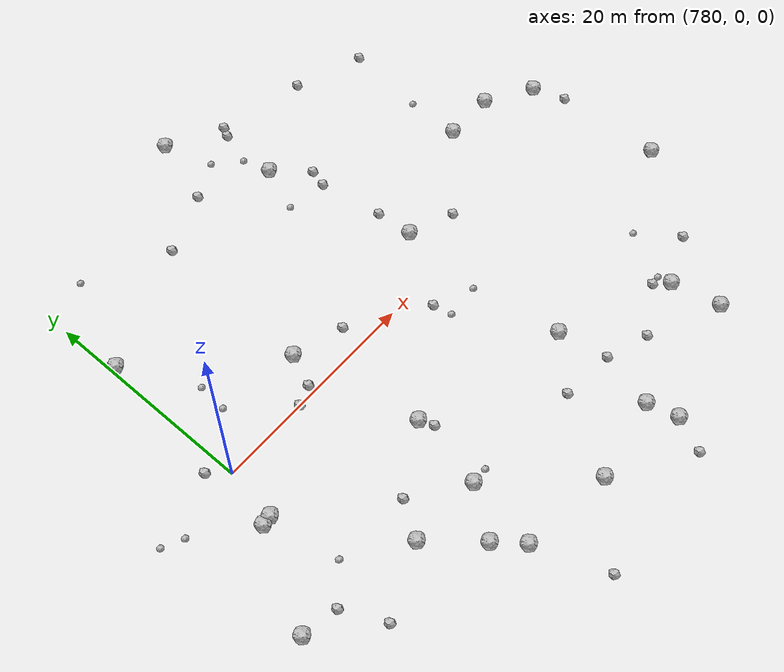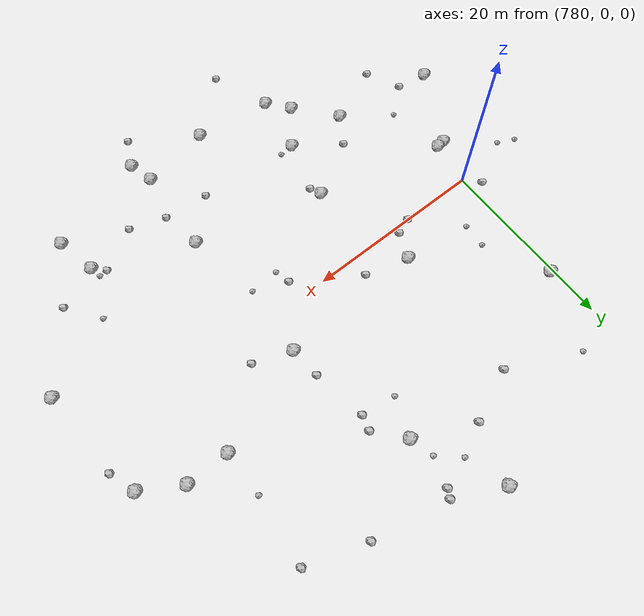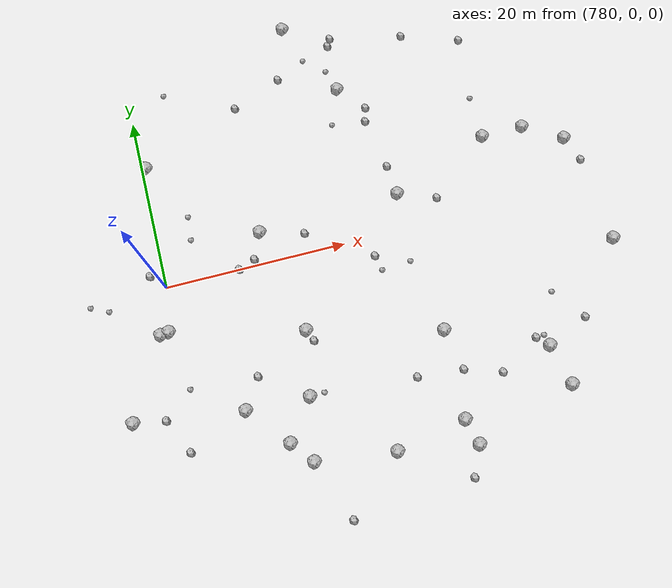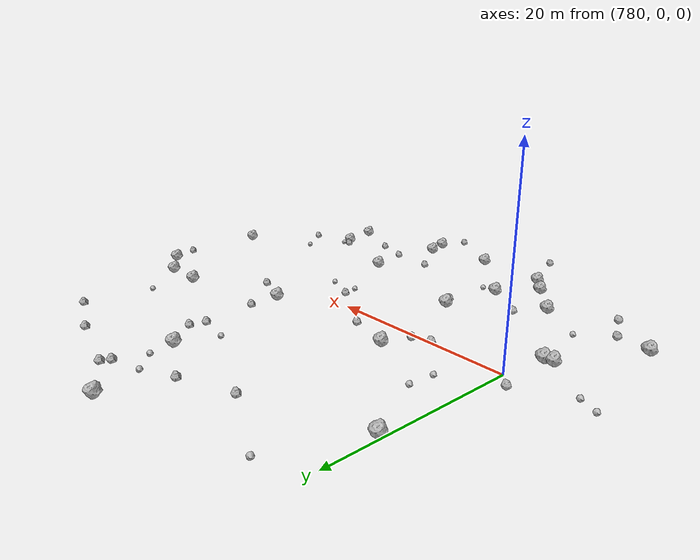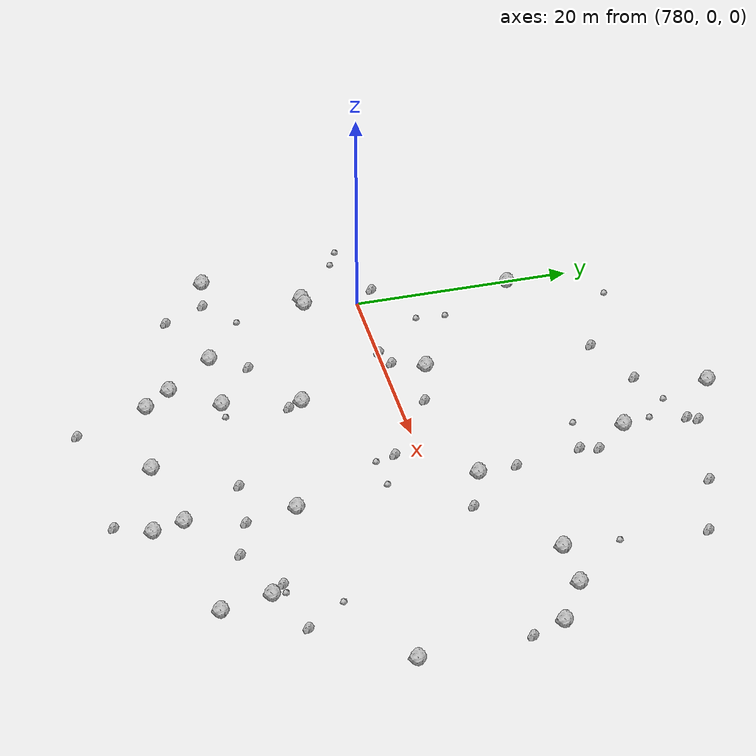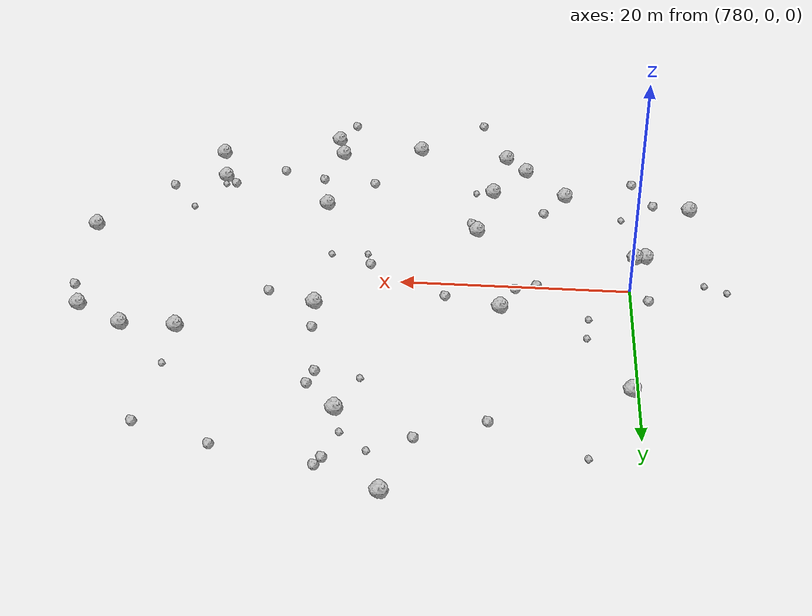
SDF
<sdf version="1.6">
 <world name="default">
  <include><uri>model://sun</uri></include>
  <model name="rock1_20_4">
   <include><uri>model://rock1</uri><pose>778.4753780196405 -5.02776273687974 0.5 0 0 0</pose></include>
  </model>
  <model name="rock1_20_5">
   <include><uri>model://rock1</uri><pose>791.1880117989283 -21.981650334903442 0.5 0 0 0</pose></include>
  </model>
  <model name="rock1_20_6">
   <include><uri>model://rock1</uri><pose>785.5257105684366 -15.118134649139492 0.5 0 0 0</pose></include>
  </model>
  <model name="rock1_20_7">
   <include><uri>model://rock1</uri><pose>793.6238957522977 -8.40751480659155 0.5 0 0 0</pose></include>
  </model>
  <model name="rock1_20_8">
   <include><uri>model://rock1</uri><pose>807.900963334611 -12.088778932790337 0.5 0 0 0</pose></include>
  </model>
  <model name="rock1_20_9">
   <include><uri>model://rock1</uri><pose>799.7306250905763 -23.109929781710797 0.5 0 0 0</pose></include>
  </model>
  <model name="rock1_20_10">
   <include><uri>model://rock1</uri><pose>823.071871862472 8.428786631577552 0.5 0 0 0</pose></include>
  </model>
  <model name="rock1_20_11">
   <include><uri>model://rock1</uri><pose>773.9163891941655 -13.476347096206396 0.5 0 0 0</pose></include>
  </model>
  <model name="rock1_20_12">
   <include><uri>model://rock1</uri><pose>780.5297196400637 14.180271473451377 0.5 0 0 0</pose></include>
  </model>
  <model name="rock1_20_13">
   <include><uri>model://rock1</uri><pose>807.1381581168959 4.15824588052007 0.5 0 0 0</pose></include>
  </model>
  <model name="rock1_20_14">
   <include><uri>model://rock1</uri><pose>827.2846607519042 5.896355351863448 0.5 0 0 0</pose></include>
  </model>
  <model name="rock1_20_15">
   <include><uri>model://rock1</uri><pose>808.1001873708793 -24.548027830983294 0.5 0 0 0</pose></include>
  </model>
  <model name="rock1_20_16">
   <include><uri>model://rock1</uri><pose>792.3429157064476 -15.385986374103467 0.5 0 0 0</pose></include>
  </model>
  <model name="rock1_20_17">
   <include><uri>model://rock1</uri><pose>803.787863644221 18.296198104467663 0.5 0 0 0</pose></include>
  </model>
  <model name="rock1_20_18">
   <include><uri>model://rock1</uri><pose>791.24762804776 3.5867807892223382 0.5 0 0 0</pose></include>
  </model>
  <model name="rock1_20_19">
   <include><uri>model://rock1</uri><pose>807.3893345659941 -21.731871555863737 0.5 0 0 0</pose></include>
  </model>
  <model name="rock1_20_20">
   <include><uri>model://rock1</uri><pose>818.3520962589962 8.416133973296624 0.5 0 0 0</pose></include>
  </model>
  <model name="rock1_20_21">
   <include><uri>model://rock1</uri><pose>799.4400065151268 27.487920000380292 0.5 0 0 0</pose></include>
  </model>
  <model name="rock1_20_22">
   <include><uri>model://rock1</uri><pose>779.3764360284924 -4.923546595937896 0.5 0 0 0</pose></include>
  </model>
  <model name="rock1_20_23">
   <include><uri>model://rock1</uri><pose>789.2512750225184 -19.551085738378333 0.5 0 0 0</pose></include>
  </model>
  <model name="rock1_20_24">
   <include><uri>model://rock1</uri><pose>819.3096120779836 -21.036387811190558 0.5 0 0 0</pose></include>
  </model>
  <model name="rock1_20_25">
   <include><uri>model://rock1</uri><pose>828.7796825471142 -6.842179280478341 0.5 0 0 0</pose></include>
  </model>
  <model name="rock1_20_26">
   <include><uri>model://rock1</uri><pose>818.3296911531804 -16.50690139951509 0.5 0 0 0</pose></include>
  </model>
  <model name="rock2_20_0">
   <include><uri>model://rock2</uri><pose>811.2771712277032 2.6100777485529036 0.3 0 0 0</pose></include>
  </model>
  <model name="rock2_20_1">
   <include><uri>model://rock2</uri><pose>791.7909291921119 18.945913954266025 0.3 0 0 0</pose></include>
  </model>
  <model name="rock2_20_2">
   <include><uri>model://rock2</uri><pose>788.1300057673142 0.028642112328611802 0.3 0 0 0</pose></include>
  </model>
  <model name="rock2_20_3">
   <include><uri>model://rock2</uri><pose>779.0744688838131 -17.880026204979593 0.3 0 0 0</pose></include>
  </model>
  <model name="rock2_20_4">
   <include><uri>model://rock2</uri><pose>804.5408237247453 24.96282569732096 0.3 0 0 0</pose></include>
  </model>
  <model name="rock2_20_5">
   <include><uri>model://rock2</uri><pose>817.1630778591003 -15.324384285387476 0.3 0 0 0</pose></include>
  </model>
  <model name="rock2_20_6">
   <include><uri>model://rock2</uri><pose>777.2498317762092 -14.067219011686289 0.3 0 0 0</pose></include>
  </model>
  <model name="rock2_20_7">
   <include><uri>model://rock2</uri><pose>795.9951041818574 2.258892867676842 0.3 0 0 0</pose></include>
  </model>
  <model name="rock2_20_8">
   <include><uri>model://rock2</uri><pose>797.3921093987044 21.288360767024287 0.3 0 0 0</pose></include>
  </model>
  <model name="rock2_20_9">
   <include><uri>model://rock2</uri><pose>808.7167834274007 -16.662893723286473 0.3 0 0 0</pose></include>
  </model>
  <model name="rock2_20_10">
   <include><uri>model://rock2</uri><pose>804.0533922999402 24.062220959174354 0.3 0 0 0</pose></include>
  </model>
  <model name="rock2_20_11">
   <include><uri>model://rock2</uri><pose>778.5348611347896 1.680888700861317 0.3 0 0 0</pose></include>
  </model>
  <model name="rock2_20_12">
   <include><uri>model://rock2</uri><pose>806.6513366572577 -27.635575468450007 0.3 0 0 0</pose></include>
  </model>
  <model name="rock2_20_13">
   <include><uri>model://rock2</uri><pose>789.9745776792438 0.7302843959553371 0.3 0 0 0</pose></include>
  </model>
  <model name="rock2_20_14">
   <include><uri>model://rock2</uri><pose>794.135486956284 -9.680001885218235 0.3 0 0 0</pose></include>
  </model>
  <model name="rock2_20_15">
   <include><uri>model://rock2</uri><pose>806.3501028979856 15.26913643850451 0.3 0 0 0</pose></include>
  </model>
  <model name="rock2_20_16">
   <include><uri>model://rock2</uri><pose>806.8752442482456 7.650769086983637 0.3 0 0 0</pose></include>
  </model>
  <model name="rock2_20_17">
   <include><uri>model://rock2</uri><pose>822.9704469609069 -14.499259080274856 0.3 0 0 0</pose></include>
  </model>
  <model name="rock2_20_18">
   <include><uri>model://rock2</uri><pose>787.5036302186431 -11.948047999993548 0.3 0 0 0</pose></include>
  </model>
  <model name="rock2_20_19">
   <include><uri>model://rock2</uri><pose>828.3035325191072 2.951922714065823 0.3 0 0 0</pose></include>
  </model>
  <model name="rock2_20_20">
   <include><uri>model://rock2</uri><pose>812.6681622475209 -17.99453883404098 0.3 0 0 0</pose></include>
  </model>
  <model name="rock2_20_21">
   <include><uri>model://rock2</uri><pose>802.8474573909469 -2.1919756793469922 0.3 0 0 0</pose></include>
  </model>
  <model name="rock2_20_22">
   <include><uri>model://rock2</uri><pose>803.7485350560827 -16.22267326087651 0.3 0 0 0</pose></include>
  </model>
  <model name="rock2_20_23">
   <include><uri>model://rock2</uri><pose>805.8952909869043 13.625537856571171 0.3 0 0 0</pose></include>
  </model>
  <model name="rock2_20_24">
   <include><uri>model://rock2</uri><pose>793.628120137522 -28.57219435277264 0.3 0 0 0</pose></include>
  </model>
  <model name="rock2_20_25">
   <include><uri>model://rock2</uri><pose>819.1808182760668 20.98535606736261 0.3 0 0 0</pose></include>
  </model>
  <model name="rock2_20_26">
   <include><uri>model://rock2</uri><pose>812.7598157762397 23.199140401881735 0.3 0 0 0</pose></include>
  </model>
  <model name="rock3_20_0">
   <include><uri>model://rock3</uri><pose>818.3753076173208 13.405394626320707 0.2 0 0 0</pose></include>
  </model>
  <model name="rock3_20_1">
   <include><uri>model://rock3</uri><pose>802.12516818756 14.144925222157624 0.2 0 0 0</pose></include>
  </model>
  <model name="rock3_20_2">
   <include><uri>model://rock3</uri><pose>771.6491566340023 -0.21791812107118602 0.2 0 0 0</pose></include>
  </model>
  <model name="rock3_20_3">
   <include><uri>model://rock3</uri><pose>820.3510478208956 -10.947853929551123 0.2 0 0 0</pose></include>
  </model>
  <model name="rock3_20_4">
   <include><uri>model://rock3</uri><pose>803.2149013363438 -3.97191243852944 0.2 0 0 0</pose></include>
  </model>
  <model name="rock3_20_5">
   <include><uri>model://rock3</uri><pose>793.8753283127747 -15.336405011484032 0.2 0 0 0</pose></include>
  </model>
  <model name="rock3_20_6">
   <include><uri>model://rock3</uri><pose>803.0440070160253 20.91963941016097 0.2 0 0 0</pose></include>
  </model>
  <model name="rock3_20_7">
   <include><uri>model://rock3</uri><pose>806.4648465504553 -3.755642129882933 0.2 0 0 0</pose></include>
  </model>
  <model name="rock3_20_8">
   <include><uri>model://rock3</uri><pose>800.7855033056082 22.9349373241284 0.2 0 0 0</pose></include>
  </model>
  <model name="rock3_20_9">
   <include><uri>model://rock3</uri><pose>818.0782266136428 -15.289065652602563 0.2 0 0 0</pose></include>
  </model>
  <model name="rock3_20_10">
   <include><uri>model://rock3</uri><pose>773.5263197933807 -1.1184067836686111 0.2 0 0 0</pose></include>
  </model>
  <model name="rock3_20_11">
   <include><uri>model://rock3</uri><pose>780.303907249029 -11.504421817637677 0.2 0 0 0</pose></include>
  </model>
  <model name="rock3_20_12">
   <include><uri>model://rock3</uri><pose>783.6801509063083 4.640220902578243 0.2 0 0 0</pose></include>
  </model>
  <model name="rock3_20_13">
   <include><uri>model://rock3</uri><pose>783.8898858444949 7.349834391610983 0.2 0 0 0</pose></include>
  </model>
  <model name="rock3_20_14">
   <include><uri>model://rock3</uri><pose>784.115926479395 22.574354404081085 0.2 0 0 0</pose></include>
  </model>
 </world>
</sdf>
